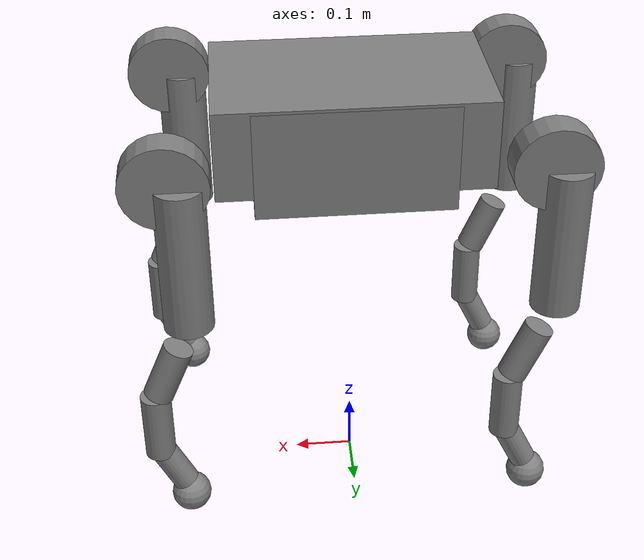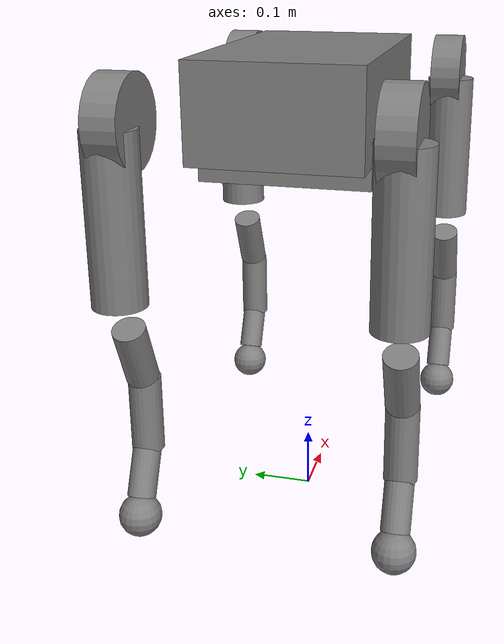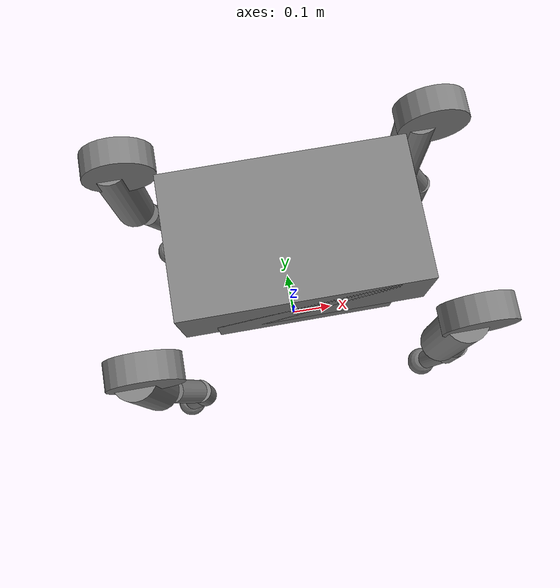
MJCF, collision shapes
<mujoco model="lite3">
  <compiler angle="radian" meshdir="meshes/"/>

  <default>
    <default class="x30">
      <geom friction="0.4" margin="0.001" condim="1"/>
      <joint axis="0 1 0" damping="0.1" armature="0.01" frictionloss="0.03"/>
      <motor ctrlrange="-84 84"/>
      <default class="abduction">
        <joint axis="1 0 0" range="-0.323 0.585"/>
      </default>
      <default class="hip">
        <default class="front_hip">
          <joint range="-2.967 0.262"/>
        </default>
        <default class="back_hip">
          <joint range="-2.967 0.262"/>
        </default>
      </default>
      <default class="knee">
        <joint range="0.349 2.531"/>
        <motor ctrlrange="-180 180"/>
      </default>
      <default class="visual">
        <geom type="mesh" contype="0" conaffinity="0" group="2" material="dark"/>
      </default>
      <default class="collision">
        <geom group="3"/>
        <default class="foot">
          <geom size="0.022" pos="-0.002 0 -0.213" priority="1" condim="6"
                friction="0.4 0.02 0.01"/>
        </default>
      </default>
    </default>
  </default>

  <asset>
    <material name="metal" rgba=".7 .7 .7 1" shininess="0.25" specular="0"/>
    <material name="dark" rgba="0.45 0.45 0.45 1" shininess="0.1"/>
    <material name="transparent" rgba="1 1 1 0.01"/>

    <mesh name="torso" file="torso.stl"/>
    <mesh name="hip" file="hip.stl"/>
    <mesh name="l_thigh" file="l_thigh.stl"/>
    <mesh name="r_thigh" file="r_thigh.stl"/>
    <mesh name="shank" file="shank.stl"/>
  </asset>

  <worldbody>
    <body name="base_link" pos="0 0 0.7" childclass="x30">
      <inertial pos="0.004098 -0.000663 -0.002069"
                mass="4.130"
                diaginertia="0.016982120 0.030466501 0.042609956"/>
      <freejoint/>
      <geom size="0.22 0.13 0.075" type="box" class="collision"/>
      <geom size="0.16 0.13 0.09" type="box" pos="0 0 -0.02" class="collision"/>
      <site name="imu" pos="0 0 0"/>
      <geom type="mesh" class="visual" material="metal" mesh="torso" quat="1 -1 0 0"/>

      <body name="FL_HIP" pos="0.291 0.08 0">
        <inertial pos="-0.0018591 -0.011377 0.00027039" quat="0.492096 0.500552 0.506945 0.500295" mass="1.43"
                  diaginertia="0.00267847 0.00159184 0.00140649"/>
        <joint name="FL_HipX" pos="0 0 0" axis="-1 0 0" range="-0.323 0.585" actuatorfrcrange="-84 84" damping="0.01"
               frictionloss="0.03"/>
        <geom type="mesh" class="visual" material="dark" mesh="hip" quat="0 0 1 0"/>
        <geom pos="0 0.11 0" quat="1 1 0 0"
              size="0.068 0.025" type="cylinder" class="collision"/>
        <body name="FL_THIGH" pos="0 0.11675 0">
          <inertial pos="-0.0087581 -0.023554 -0.055162" quat="0.724056 0.0298504 0.00499363 0.689077" mass="4.0809"
                    diaginertia="0.0164227 0.0126096 0.00608011"/>
          <joint name="FL_HipY" pos="0 0 0" axis="0 -1 0" range="-2.967 0.262" actuatorfrcrange="-84 84" damping="0.01"
                 frictionloss="0.03"/>
          <geom size="0.04 0.125" pos="-0.02 0 -0.13" type="cylinder" class="collision"/>
          <geom type="mesh" class="visual" material="dark" mesh="l_thigh" quat="-1 1 0 0"/>
          <body name="FL_SHANK" pos="0 0 -0.3">
            <inertial pos="0.0136996 1.90812e-05 -0.137342" quat="0.707173 -0.00648366 -0.00623253 0.706983"
                      mass="0.77386" diaginertia="0.0115784 0.0112464 0.000424126"/>
            <joint name="FL_Knee" pos="0 0 0" axis="0 -1 0" range="0.349 2.531" actuatorfrcrange="-180 180"
                   damping="0.01" frictionloss="0.03"/>
            <geom size="0.025 0.05" pos="0.02 0 -0.046" quat="0.980067 0 -0.198669 0" type="cylinder" class="collision"/>
            <geom size="0.025 0.06" pos="0.045 0 -0.155" type="cylinder" class="collision"/>
            <geom size="0.022 0.04" pos="0.025 0 -0.246" quat="0.974794 0 0.223106 0" type="cylinder" class="collision"/>
            <geom size="0.033" pos="0 0 -0.31" class="collision"/>
            <geom class="visual" material="metal" type="mesh" mesh="shank" quat="1 -1 0 0"/>
          </body>
        </body>
      </body>
      <body name="FR_HIP" pos="0.291 -0.08 0">
        <inertial pos="-0.0018591 0.011377 -2.7675e-05" quat="0.507783 0.499436 0.488975 0.503611" mass="1.43"
                  diaginertia="0.00267852 0.00159185 0.00140643"/>
        <joint name="FR_HipX" pos="0 0 0" axis="-1 0 0" range="-0.585 0.323" actuatorfrcrange="-84 84" damping="0.01"
               frictionloss="0.03"/>
        <geom pos="0 -0.11 0" quat="1 1 0 0"
              size="0.068 0.025" type="cylinder" class="collision"/>
        <geom type="mesh" class="visual" material="dark" mesh="hip" quat="0 0 0 1"/>
        <body name="FR_THIGH" pos="0 -0.11675 0">
          <inertial pos="-0.0087433 0.023551 -0.055154" quat="0.688998 0.00499198 0.0298429 0.724132" mass="4.0809"
                    diaginertia="0.0164227 0.0126095 0.00608033"/>
          <joint name="FR_HipY" pos="0 0 0" axis="0 -1 0" range="-2.967 0.262" actuatorfrcrange="-84 84" damping="0.01"
                 frictionloss="0.03"/>
          <geom size="0.04 0.125" pos="-0.02 0 -0.13" type="cylinder" class="collision"/>
          <geom type="mesh" class="visual" material="dark" mesh="r_thigh" quat="-1 1 0 0"/>
          <body name="FR_SHANK" pos="0 0 -0.3">
            <inertial pos="0.0136996 1.90831e-05 -0.137342" quat="0.707173 -0.00648365 -0.00623254 0.706983"
                      mass="0.77386" diaginertia="0.0115784 0.0112464 0.000424126"/>
            <joint name="FR_Knee" pos="0 0 0" axis="0 -1 0" range="0.349 2.531" actuatorfrcrange="-180 180"
                   damping="0.01" frictionloss="0.03"/>
            <geom size="0.025 0.05" pos="0.02 0 -0.046" quat="0.980067 0 -0.198669 0" type="cylinder" class="collision"/>
            <geom size="0.025 0.06" pos="0.045 0 -0.155" type="cylinder" class="collision"/>
            <geom size="0.022 0.04" pos="0.025 0 -0.246" quat="0.974794 0 0.223106 0" type="cylinder" class="collision"/>
            <geom size="0.033" pos="0 0 -0.31" class="collision"/>
            <geom class="visual" material="metal" type="mesh" mesh="shank" quat="1 -1 0 0"/>
          </body>
        </body>
      </body>
      <body name="HL_HIP" pos="-0.291 0.08 0">
        <inertial pos="0.0018591 -0.011377 -2.7675e-05" quat="0.499436 0.507783 0.503611 0.488975" mass="1.43"
                  diaginertia="0.00267852 0.00159185 0.00140643"/>
        <joint name="HL_HipX" pos="0 0 0" axis="-1 0 0" range="-0.323 0.585" actuatorfrcrange="-84 84" damping="0.01"
               frictionloss="0.03"/>
        <geom pos="0 0.11 0" quat="1 1 0 0"
              size="0.068 0.025" type="cylinder" class="collision"/>
        <geom type="mesh" class="visual" material="dark" mesh="hip" quat="1 0 0 0"/>
        <body name="HL_THIGH" pos="0 0.11675 0">
          <inertial pos="-0.0087581 -0.023554 -0.055162" quat="0.724056 0.0298504 0.00499363 0.689077" mass="4.0809"
                    diaginertia="0.0164227 0.0126096 0.00608011"/>
          <joint name="HL_HipY" pos="0 0 0" axis="0 -1 0" range="-2.967 0.262" actuatorfrcrange="-84 84" damping="0.01"
                 frictionloss="0.03"/>
          <geom size="0.04 0.125" pos="-0.02 0 -0.13" type="cylinder" class="collision"/>
          <geom type="mesh" class="visual" material="dark" mesh="l_thigh" quat="-1 1 0 0"/>
          <body name="HL_SHANK" pos="0 0 -0.3">
            <inertial pos="0.0136996 1.90757e-05 -0.137342" quat="0.707173 -0.00648365 -0.00623255 0.706983"
                      mass="0.77386" diaginertia="0.0115784 0.0112464 0.000424126"/>
            <joint name="HL_Knee" pos="0 0 0" axis="0 -1 0" range="0.349 2.531" actuatorfrcrange="-180 180"
                   damping="0.01" frictionloss="0.03"/>
            <geom size="0.025 0.05" pos="0.02 0 -0.046" quat="0.980067 0 -0.198669 0" type="cylinder" class="collision"/>
            <geom size="0.025 0.06" pos="0.045 0 -0.155" type="cylinder" class="collision"/>
            <geom size="0.022 0.04" pos="0.025 0 -0.246" quat="0.974794 0 0.223106 0" type="cylinder" class="collision"/>
            <geom size="0.033" pos="0 0 -0.31" class="collision"/>
            <geom class="visual" material="metal" type="mesh" mesh="shank" quat="1 -1 0 0"/>
          </body>
        </body>
      </body>
      <body name="HR_HIP" pos="-0.291 -0.08 0">
        <inertial pos="0.0018591 0.011377 0.00027039" quat="0.500552 0.492096 0.500295 0.506945" mass="1.43"
                  diaginertia="0.00267847 0.00159184 0.00140649"/>
        <joint name="HR_HipX" pos="0 0 0" axis="-1 0 0" range="-0.585 0.323" actuatorfrcrange="-84 84" damping="0.01"
               frictionloss="0.03"/>
        <geom type="mesh" class="visual" material="dark" mesh="hip" quat="0 1 0 0"/>
        <geom pos="0 -0.11 0" quat="1 1 0 0"
              size="0.068 0.025" type="cylinder" class="collision"/>
        <body name="HR_THIGH" pos="0 -0.11675 0">
          <inertial pos="-0.0087433 0.023551 -0.055154" quat="0.688998 0.00499198 0.0298429 0.724132" mass="4.0809"
                    diaginertia="0.0164227 0.0126095 0.00608033"/>
          <joint name="HR_HipY" pos="0 0 0" axis="0 -1 0" range="-2.967 0.262" actuatorfrcrange="-84 84" damping="0.01"
                 frictionloss="0.03"/>
          <geom size="0.04 0.125" pos="-0.02 0 -0.13" type="cylinder" class="collision"/>
          <geom type="mesh" class="visual" material="dark" mesh="r_thigh" quat="-1 1 0 0"/>
          <body name="HR_SHANK" pos="0 0 -0.3">
            <inertial pos="0.0136996 1.90757e-05 -0.137342" quat="0.707173 -0.00648365 -0.00623255 0.706983"
                      mass="0.77386" diaginertia="0.0115784 0.0112464 0.000424126"/>
            <joint name="HR_Knee" pos="0 0 0" axis="0 -1 0" range="0.349 2.531" actuatorfrcrange="-180 180"
                   damping="0.01" frictionloss="0.03"/>
            <geom size="0.025 0.05" pos="0.02 0 -0.046" quat="0.980067 0 -0.198669 0" type="cylinder" class="collision"/>
            <geom size="0.025 0.06" pos="0.045 0 -0.155" type="cylinder" class="collision"/>
            <geom size="0.022 0.04" pos="0.025 0 -0.246" quat="0.974794 0 0.223106 0" type="cylinder" class="collision"/>
            <geom size="0.033" pos="0 0 -0.31" class="collision"/>
            <geom class="visual" material="metal" type="mesh" mesh="shank" quat="1 -1 0 0"/>
          </body>
        </body>
      </body>
    </body>
  </worldbody>

  <actuator>
    <motor class="abduction" name="FR_hip" joint="FR_HipX"/>
    <motor class="hip" name="FR_thigh" joint="FR_HipY"/>
    <motor class="knee" name="FR_calf" joint="FR_Knee"/>
    <motor class="abduction" name="FL_hip" joint="FL_HipX"/>
    <motor class="hip" name="FL_thigh" joint="FL_HipY"/>
    <motor class="knee" name="FL_calf" joint="FL_Knee"/>
    <motor class="abduction" name="RR_hip" joint="HR_HipX"/>
    <motor class="hip" name="RR_thigh" joint="HR_HipY"/>
    <motor class="knee" name="RR_calf" joint="HR_Knee"/>
    <motor class="abduction" name="RL_hip" joint="HL_HipX"/>
    <motor class="hip" name="RL_thigh" joint="HL_HipY"/>
    <motor class="knee" name="RL_calf" joint="HL_Knee"/>
  </actuator>

  <sensor>
    <jointpos name="FR_hip_pos" joint="FR_HipX"/>
    <jointpos name="FR_thigh_pos" joint="FR_HipY"/>
    <jointpos name="FR_calf_pos" joint="FR_Knee"/>
    <jointpos name="FL_hip_pos" joint="FL_HipX"/>
    <jointpos name="FL_thigh_pos" joint="FL_HipY"/>
    <jointpos name="FL_calf_pos" joint="FL_Knee"/>
    <jointpos name="RR_hip_pos" joint="HR_HipX"/>
    <jointpos name="RR_thigh_pos" joint="HR_HipY"/>
    <jointpos name="RR_calf_pos" joint="HR_Knee"/>
    <jointpos name="RL_hip_pos" joint="HL_HipX"/>
    <jointpos name="RL_thigh_pos" joint="HL_HipY"/>
    <jointpos name="RL_calf_pos" joint="HL_Knee"/>

    <jointvel name="FR_hip_vel" joint="FR_HipX"/>
    <jointvel name="FR_thigh_vel" joint="FR_HipY"/>
    <jointvel name="FR_calf_vel" joint="FR_Knee"/>
    <jointvel name="FL_hip_vel" joint="FL_HipX"/>
    <jointvel name="FL_thigh_vel" joint="FL_HipY"/>
    <jointvel name="FL_calf_vel" joint="FL_Knee"/>
    <jointvel name="RR_hip_vel" joint="HR_HipX"/>
    <jointvel name="RR_thigh_vel" joint="HR_HipY"/>
    <jointvel name="RR_calf_vel" joint="HR_Knee"/>
    <jointvel name="RL_hip_vel" joint="HL_HipX"/>
    <jointvel name="RL_thigh_vel" joint="HL_HipY"/>
    <jointvel name="RL_calf_vel" joint="HL_Knee"/>

    <jointactuatorfrc name="FR_hip_torque" joint="FR_HipX" noise="0.01"/>
    <jointactuatorfrc name="FR_thigh_torque" joint="FR_HipY" noise="0.01"/>
    <jointactuatorfrc name="FR_calf_torque" joint="FR_Knee" noise="0.01"/>
    <jointactuatorfrc name="FL_hip_torque" joint="FL_HipX" noise="0.01"/>
    <jointactuatorfrc name="FL_thigh_torque" joint="FL_HipY" noise="0.01"/>
    <jointactuatorfrc name="FL_calf_torque" joint="FL_Knee" noise="0.01"/>
    <jointactuatorfrc name="RR_hip_torque" joint="HR_HipX" noise="0.01"/>
    <jointactuatorfrc name="RR_thigh_torque" joint="HR_HipY" noise="0.01"/>
    <jointactuatorfrc name="RR_calf_torque" joint="HR_Knee" noise="0.01"/>
    <jointactuatorfrc name="RL_hip_torque" joint="HL_HipX" noise="0.01"/>
    <jointactuatorfrc name="RL_thigh_torque" joint="HL_HipY" noise="0.01"/>
    <jointactuatorfrc name="RL_calf_torque" joint="HL_Knee" noise="0.01"/>

    <framequat name="imu_quat" objtype="site" objname="imu"/>
    <gyro name="imu_gyro" site="imu"/>
    <accelerometer name="imu_acc" site="imu"/>

    <framepos name="frame_pos" objtype="site" objname="imu"/>
    <framelinvel name="frame_vel" objtype="site" objname="imu"/>

  </sensor>

  <keyframe>
    <key name="home" qpos="0 0 0.15 1 0 0 0 -0.32 -2.9 2.5 0.32 -2.9 2.5 -0.32 -2.9 2.5 0.32 -2.9 2.5"
         ctrl="0 0 0 0 0 0 0 0 0 0 0 0"/>
  </keyframe>
</mujoco>
